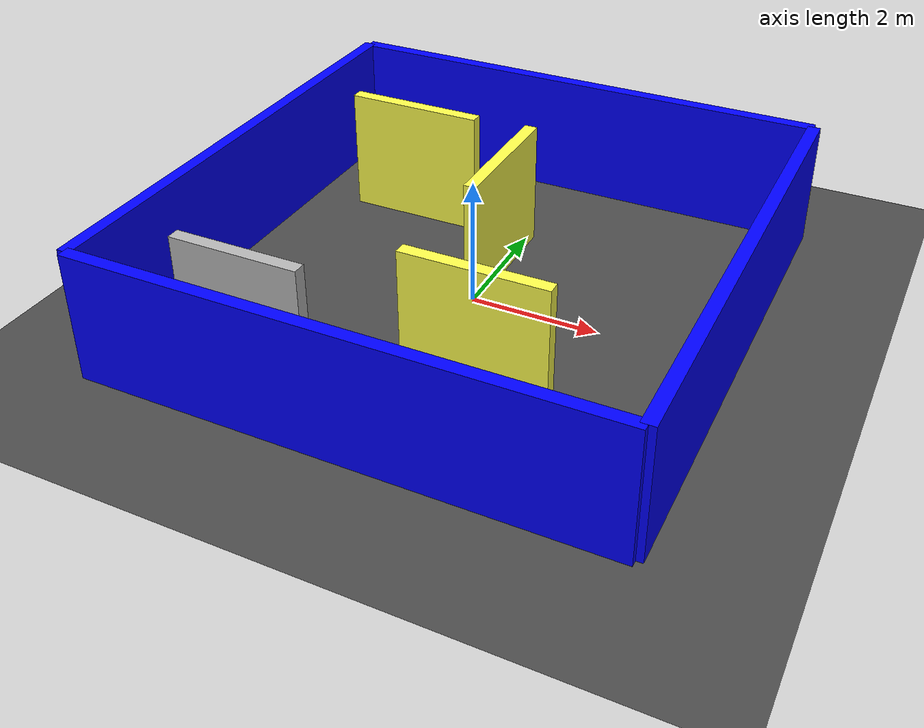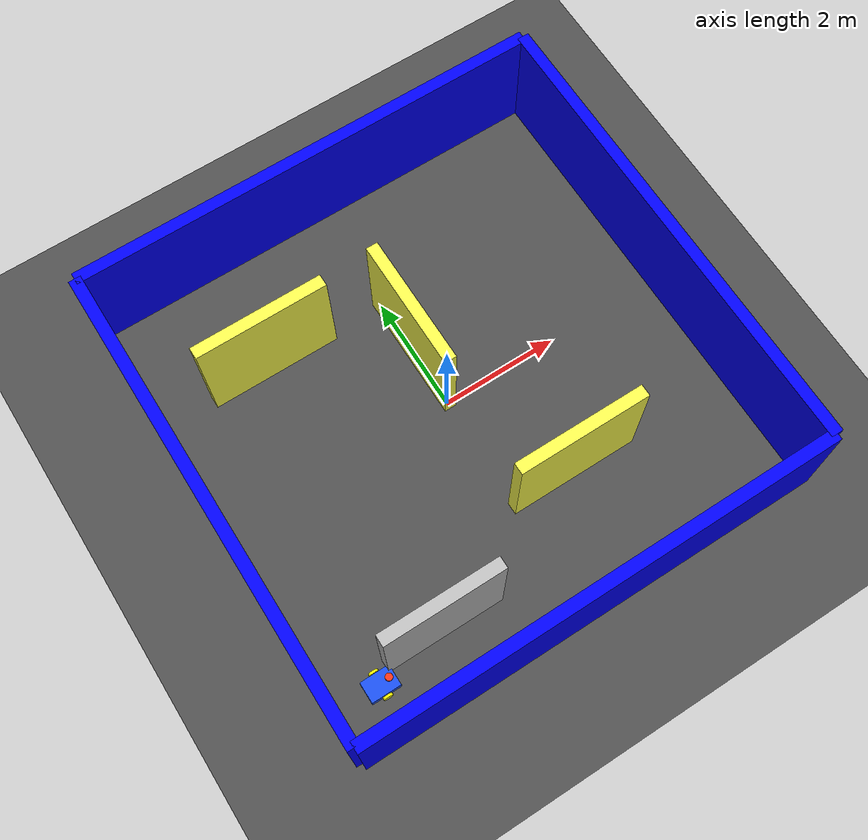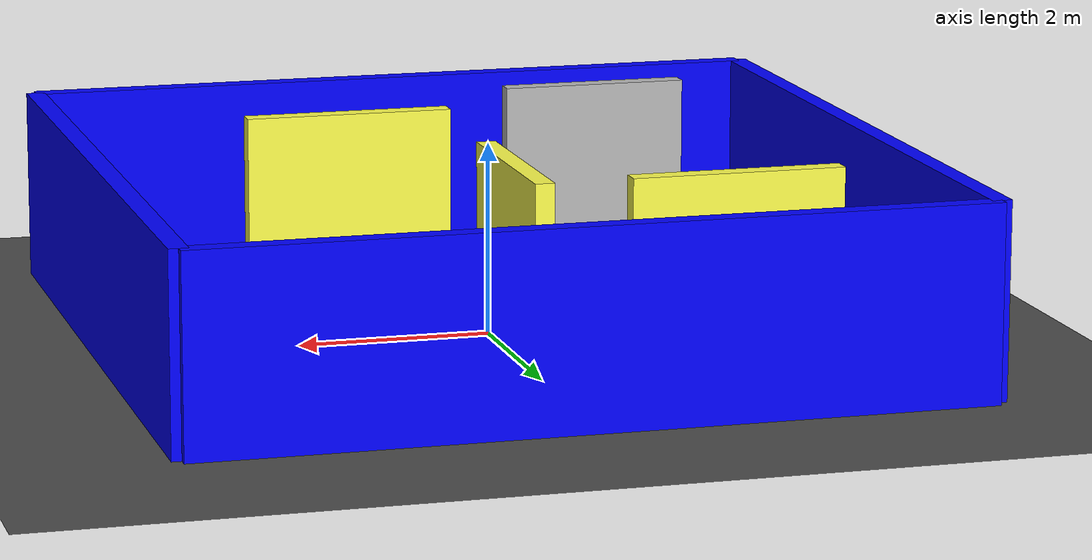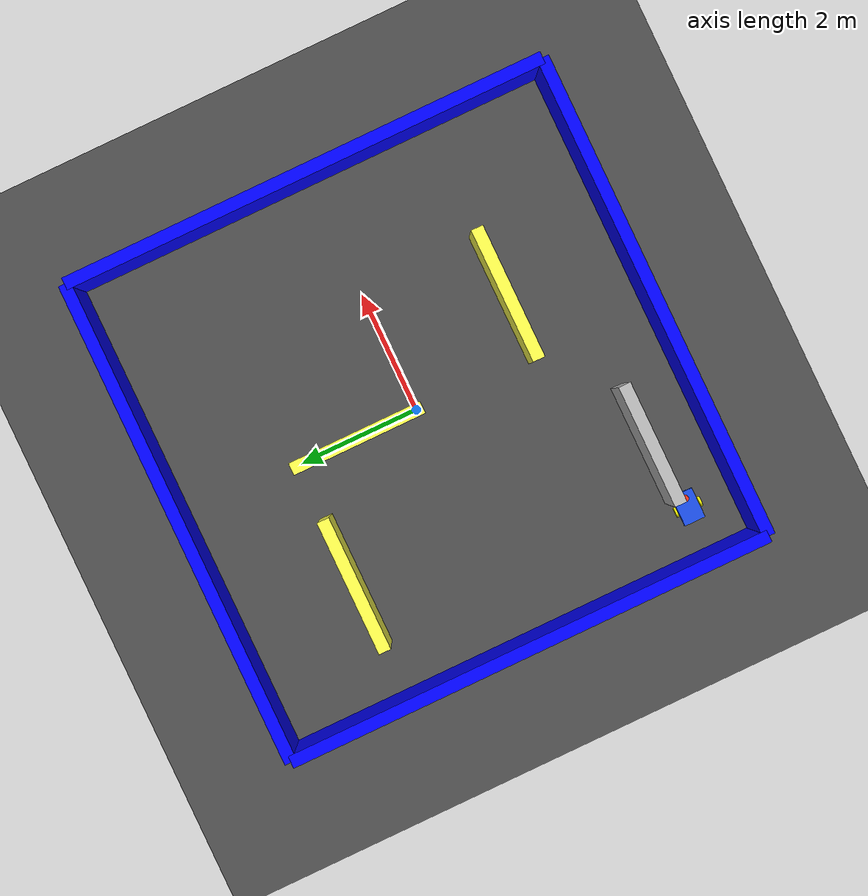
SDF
<?xml version="1.0" ?>
<sdf version="1.9">
  <world name="empty">

    <!-- PLUGINS -->
    <plugin filename="gz-sim-physics-system" name="gz::sim::systems::Physics"/>
    <plugin filename="gz-sim-user-commands-system" name="gz::sim::systems::UserCommands"/>
    <plugin filename="gz-sim-scene-broadcaster-system" name="gz::sim::systems::SceneBroadcaster"/>
    <plugin filename="gz-sim-sensors-system" name="gz::sim::systems::Sensors">
      <render_engine>ogre2</render_engine>
    </plugin>

    <!-- LUZ -->
    <light type="directional" name="sun">
      <pose>0 0 10 0 0 0</pose>
      <direction>-0.5 0.1 -0.9</direction>
    </light>

    <!-- PISO -->
    <model name="ground_plane">
      <static>true</static>
      <link name="link">
        <collision name="collision">
          <geometry>
            <plane>
              <normal>0 0 1</normal>
              <size>20 20</size>
            </plane>
          </geometry>
        </collision>

        <visual name="visual">
          <geometry>
            <plane>
              <normal>0 0 1</normal>
              <size>20 20</size>
            </plane>
          </geometry>
          <material>
            <ambient>0.3 0.3 0.3 1</ambient>
            <diffuse>0.3 0.3 0.3 1</diffuse>
          </material>
        </visual>
      </link>
    </model>

    <!-- ROBOT -->
    <!-- (NO TOCADO, ya funciona) -->
    <model name="dif_bot">
      <pose>-3.2 -3.2 0.08 0 0 0</pose>

      <link name="base_link">
        <inertial>
          <mass>5.0</mass>
          <inertia>
            <ixx>0.05</ixx>
            <iyy>0.08</iyy>
            <izz>0.10</izz>
          </inertia>
        </inertial>
        <collision name="base_collision">
          <geometry>
            <box>
              <size>0.5 0.35 0.16</size>
            </box>
          </geometry>
        </collision>
        <visual name="base_visual">
          <geometry>
            <box>
              <size>0.5 0.35 0.16</size>
            </box>
          </geometry>
          <material>
            <ambient>0.1 0.3 0.9 1</ambient>
            <diffuse>0.1 0.3 0.9 1</diffuse>
          </material>
        </visual>
      </link>

      <link name="left_wheel">
        <pose>0 0.205 0 1.5708 0 0</pose>
        <inertial>
          <mass>0.5</mass>
          <inertia>
            <ixx>0.001</ixx>
            <iyy>0.001</iyy>
            <izz>0.001</izz>
          </inertia>
        </inertial>
        <collision name="collision">
          <geometry>
            <cylinder>
              <radius>0.08</radius>
              <length>0.04</length>
            </cylinder>
          </geometry>
        </collision>
        <visual name="visual">
    <material>
      <ambient>1 1 0 1</ambient>
      <diffuse>1 1 0 1</diffuse>
    </material>
          <geometry>
            <cylinder>
              <radius>0.08</radius>
              <length>0.04</length>
            </cylinder>
          </geometry>
        </visual>
      </link>

      <link name="right_wheel">
        <pose>0 -0.205 0 1.5708 0 0</pose>
        <inertial>
          <mass>0.5</mass>
          <inertia>
            <ixx>0.001</ixx>
            <iyy>0.001</iyy>
            <izz>0.001</izz>
          </inertia>
        </inertial>
        <collision name="collision">
          <geometry>
            <cylinder>
              <radius>0.08</radius>
              <length>0.04</length>
            </cylinder>
          </geometry>
        </collision>
        <visual name="visual">
    <material>
      <ambient>1 1 0 1</ambient>
      <diffuse>1 1 0 1</diffuse>
    </material>
          <geometry>
            <cylinder>
              <radius>0.08</radius>
              <length>0.04</length>
            </cylinder>
          </geometry>
        </visual>
      </link>

      <joint name="left_wheel_joint" type="revolute">
        <parent>base_link</parent>
        <child>left_wheel</child>
        <axis>
          <xyz>0 0 1</xyz>
          <limit>
            <lower>-10000000000000000</lower>
            <upper>10000000000000000</upper>
          </limit>
        </axis>
      </joint>

      <joint name="right_wheel_joint" type="revolute">
        <parent>base_link</parent>
        <child>right_wheel</child>
        <axis>
          <xyz>0 0 1</xyz>
          <limit>
            <lower>-10000000000000000</lower>
            <upper>10000000000000000</upper>
          </limit>
        </axis>
      </joint>

      <link name="lidar_link">
        <pose>0.15 0 0.18 0 0 0</pose>
        <inertial>
          <mass>0.1</mass>
          <inertia>
            <ixx>0.0001</ixx>
            <iyy>0.0001</iyy>
            <izz>0.0001</izz>
          </inertia>
        </inertial>

        <visual name="lidar_visual">
          <geometry>
            <cylinder>
              <radius>0.06</radius>
              <length>0.04</length>
            </cylinder>
          </geometry>
          <material>
            <ambient>1.0 0.2 0.1 1</ambient>
            <diffuse>1.0 0.2 0.1 1</diffuse>
          </material>
        </visual>

        <sensor name="lidar_sensor" type="gpu_lidar">
          <pose>0 0 0 0 0 0</pose>
          <topic>/scan</topic>
          <update_rate>10</update_rate>
          <always_on>true</always_on>
          <visualize>true</visualize>
          <gz_frame_id>lidar_link</gz_frame_id>

          <ray>
            <scan>
              <horizontal>
                <samples>360</samples>
                <resolution>1</resolution>
                <min_angle>-3.14159</min_angle>
                <max_angle>3.14159</max_angle>
              </horizontal>
            </scan>
            <range>
              <min>0.12</min>
              <max>8.0</max>
              <resolution>0.01</resolution>
            </range>
          </ray>
        </sensor>
      </link>

      <joint name="lidar_joint" type="fixed">
        <parent>base_link</parent>
        <child>lidar_link</child>
      </joint>

      <plugin filename="gz-sim-diff-drive-system" name="gz::sim::systems::DiffDrive">
        <left_joint>left_wheel_joint</left_joint>
        <right_joint>right_wheel_joint</right_joint>
        <wheel_separation>0.41</wheel_separation>
        <wheel_radius>0.08</wheel_radius>
        <topic>/cmd_vel</topic>
        <odom_topic>/odom</odom_topic>
        <frame_id>odom</frame_id>
        <child_frame_id>base_link</child_frame_id>
      </plugin>

    </model>
<!-- LABERINTO PRO -->

<!-- PAREDES EXTERNAS -->
<model name="outer_wall_1">
  <static>true</static>
  <link name="link">
    <pose>4 0 1 0 0 0</pose>
    <collision name="collision">
      <geometry><box><size>0.2 8 2</size></box></geometry>
    </collision>
    <visual name="visual">
      <geometry><box><size>0.2 8 2</size></box></geometry>
      <material>
        <ambient>0 0 1 1</ambient>
        <diffuse>0 0 1 1</diffuse>
      </material>
    </visual>
  </link>
</model>

<model name="outer_wall_2">
  <static>true</static>
  <link name="link">
    <pose>-4 0 1 0 0 0</pose>
    <collision name="collision">
      <geometry><box><size>0.2 8 2</size></box></geometry>
    </collision>
    <visual name="visual">
      <geometry><box><size>0.2 8 2</size></box></geometry>
      <material>
        <ambient>0 0 1 1</ambient>
        <diffuse>0 0 1 1</diffuse>
      </material>
    </visual>
  </link>
</model>

<model name="outer_wall_3">
  <static>true</static>
  <link name="link">
    <pose>0 4 1 0 0 0</pose>
    <collision name="collision">
      <geometry><box><size>8 0.2 2</size></box></geometry>
    </collision>
    <visual name="visual">
      <geometry><box><size>8 0.2 2</size></box></geometry>
      <material>
        <ambient>0 0 1 1</ambient>
        <diffuse>0 0 1 1</diffuse>
      </material>
    </visual>
  </link>
</model>

<model name="outer_wall_4">
  <static>true</static>
  <link name="link">
    <pose>0 -4 1 0 0 0</pose>
    <collision name="collision">
      <geometry><box><size>8 0.2 2</size></box></geometry>
    </collision>
    <visual name="visual">
      <geometry><box><size>8 0.2 2</size></box></geometry>
      <material>
        <ambient>0 0 1 1</ambient>
        <diffuse>0 0 1 1</diffuse>
      </material>
    </visual>
  </link>
</model>

<!-- PAREDES INTERNAS -->
<model name="wall_a">
  <static>true</static>
  <link name="link">
    <pose>-2 2 1 0 0 0</pose>
    <collision name="collision">
      <geometry><box><size>2.2 0.2 2</size></box></geometry>
    </collision>
    <visual name="visual">
      <geometry><box><size>2.2 0.2 2</size></box></geometry>
      <material>
        <ambient>1 1 0.3 1</ambient>
        <diffuse>1 1 0.3 1</diffuse>
      </material>
    </visual>
  </link>
</model>

<model name="wall_b">
  <static>true</static>
  <link name="link">
    <pose>1 -2 1 0 0 0</pose>
    <collision name="collision">
      <geometry><box><size>2.2 0.2 2</size></box></geometry>
    </collision>
    <visual name="visual">
      <geometry><box><size>2.2 0.2 2</size></box></geometry>
      <material>
        <ambient>1 1 0.3 1</ambient>
        <diffuse>1 1 0.3 1</diffuse>
      </material>
    </visual>
  </link>
</model>

<model name="wall_c">
  <static>true</static>
  <link name="link">
    <pose>0 1 1 0 0 0</pose>
    <collision name="collision">
      <geometry><box><size>0.2 2.2 2</size></box></geometry>
    </collision>
    <visual name="visual">
      <geometry><box><size>0.2 2.2 2</size></box></geometry>
      <material>
        <ambient>1 1 0.3 1</ambient>
        <diffuse>1 1 0.3 1</diffuse>
      </material>
    </visual>
  </link>
</model>
<model name="wall_f">
  <static>true</static>
  <link name="link">
    <pose>-2 -3 1 0 0 0</pose>
    <collision name="collision"><geometry><box><size>2 0.2 2</size></box></geometry></collision>
    <visual name="visual"><geometry><box><size>2 0.2 2</size></box></geometry></visual>
    <material>
      <ambient>1 1 0 1</ambient>
      <diffuse>1 1 0 1</diffuse>
    </material>
  </link>
</model>

  </world>
</sdf>
